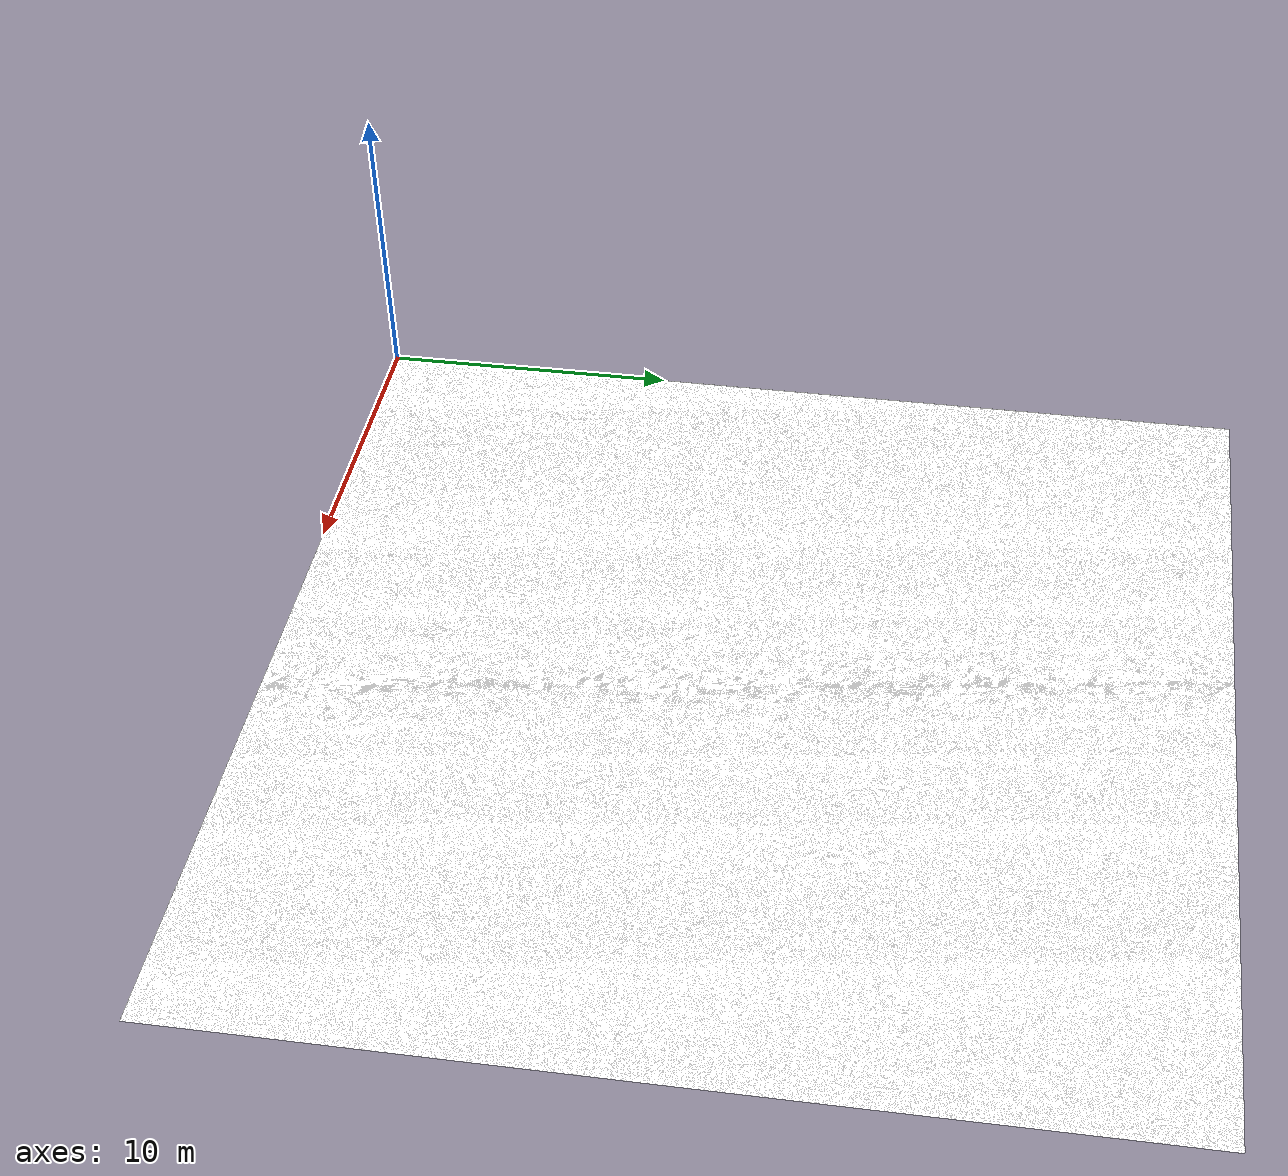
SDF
<?xml version="1.0" ?>
<sdf version="1.5">
  <model name="scenario2">
      <link name="scenario2_link">
        <collision name="scenario2_collision">
          <geometry>
            <mesh>
	          <uri>model://scenario2/meshes/scenario2.dae</uri>
              <scale>1 1 0.005</scale>
            </mesh>
          </geometry>
        </collision>
        <visual name="scenario2_visual">
          <geometry>
            <mesh>
	          <uri>model://scenario2/meshes/scenario2.dae</uri>
              <scale>1 1 0.005</scale>
            </mesh>
          </geometry>
          <cast_shadows>false</cast_shadows>
        </visual>
      </link>
      <static>true</static>
    </model>
</sdf>
